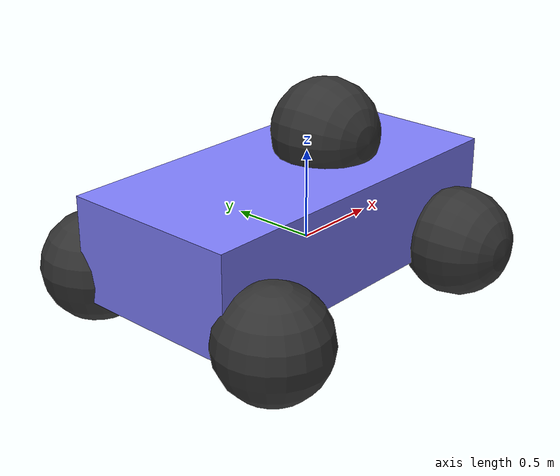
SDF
<?xml version="1.0" ?>
<sdf version="1.8">
    <model name='diff_drive'>

      <plugin filename="gz-sim-imu-system"
        name="gz::sim::systems::Imu">
      </plugin>

      <plugin
        filename="libignition-gazebo-imu-system.so"
        name="ignition::gazebo::systems::Imu">
      </plugin>

      <plugin
        filename="gz-sim-sensors-system"
        name="gz::sim::systems::Sensors">
        <render_engine>ogre2</render_engine>
      </plugin>

      <plugin
        filename="gz-sim-joint-state-publisher-system"
        name="gz::sim::systems::JointStatePublisher">
      </plugin>

      <plugin
        filename="gz-sim-pose-publisher-system"
        name="gz::sim::systems::PosePublisher">
        <publish_link_pose>true</publish_link_pose>
        <use_pose_vector_msg>true</use_pose_vector_msg>
        <static_publisher>true</static_publisher>
        <static_update_frequency>1</static_update_frequency>
      </plugin>

      <plugin
        filename="gz-sim-odometry-publisher-system"
        name="gz::sim::systems::OdometryPublisher">
        <odom_frame>diff_drive/odom</odom_frame>
        <robot_base_frame>diff_drive</robot_base_frame>
      </plugin>

      <plugin
        filename="ignition-gazebo-diff-drive-system"
        name="ignition::gazebo::systems::DiffDrive">
        <left_joint>left_wheel_joint</left_joint>
        <right_joint>right_wheel_joint</right_joint>
        <wheel_separation>1.25</wheel_separation>
        <wheel_radius>0.3</wheel_radius>
        <odom_publish_frequency>1</odom_publish_frequency>
        <max_linear_acceleration>2</max_linear_acceleration>
        <min_linear_acceleration>-2</min_linear_acceleration>
        <max_angular_acceleration>2</max_angular_acceleration>
        <min_angular_acceleration>-2</min_angular_acceleration>
        <max_linear_velocity>0.5</max_linear_velocity>
        <min_linear_velocity>-0.5</min_linear_velocity>
        <max_angular_velocity>1</max_angular_velocity>
        <min_angular_velocity>-1</min_angular_velocity>
      </plugin>

      <link name='chassis'>
        <pose>-0.151427 -0 0.175 0 -0 0</pose>
        <inertial>
          <mass>1.14395</mass>
          <inertia>
            <ixx>0.126164</ixx>
            <ixy>0</ixy>
            <ixz>0</ixz>
            <iyy>0.416519</iyy>
            <iyz>0</iyz>
            <izz>0.481014</izz>
          </inertia>
        </inertial>
        <visual name='visual_chassis'>
          <geometry>
            <box>
              <size>2.01142 1 0.568726</size>
            </box>
          </geometry>
          <material>
            <ambient>0.5 0.5 1.0 1</ambient>
            <diffuse>0.5 0.5 1.0 1</diffuse>
            <specular>0.0 0.0 1.0 1</specular>
          </material>
        </visual>
        <collision name='collision_chassis'>
          <geometry>
            <box>
              <size>2.01142 1 0.568726</size>
            </box>
          </geometry>
        </collision>

        <sensor name='gpu_lidar1' type='gpu_lidar'>"
          <topic>/diff_drive/lidar</topic>
          <update_rate>10</update_rate>
          <ignition_frame_id>diff_drive/chassis</ignition_frame_id>
          <ray>
            <scan>
                <horizontal>
                    <samples>640</samples>
                    <resolution>1</resolution>
                    <min_angle>-1.396263</min_angle>
                    <max_angle>1.396263</max_angle>
                </horizontal>
                <vertical>
                    <samples>1</samples>
                    <resolution>0.01</resolution>
                    <min_angle>0</min_angle>
                    <max_angle>0</max_angle>
                </vertical>
            </scan>
            <range>
                <min>0.08</min>
                <max>10.0</max>
                <resolution>0.01</resolution>
            </range>
          </ray>
          <always_on>1</always_on>
          <visualize>true</visualize>
        </sensor>

      </link>

      <link name='tank_tower'>
        <pose>0.151427 -0 0.568726 -1.5707 0 0</pose>
        <inertial>
          <mass>2</mass>
          <inertia>
            <ixx>0.145833</ixx>
            <ixy>0</ixy>
            <ixz>0</ixz>
            <iyy>0.145833</iyy>
            <iyz>0</iyz>
            <izz>0.125</izz>
          </inertia>
        </inertial>
        <visual name='visual_left_wheel'>
          <geometry>
            <sphere>
              <radius>0.3</radius>
            </sphere>
          </geometry>
          <material>
            <ambient>0.2 0.2 0.2 1</ambient>
            <diffuse>0.2 0.2 0.2 1</diffuse>
            <specular>0.2 0.2 0.2 1</specular>
          </material>
        </visual>
        <collision name='collision_left_wheel'>
          <geometry>
            <sphere>
              <radius>0.3</radius>
            </sphere>
          </geometry>
        </collision>
      </link>

      <link name='left_wheel'>
        <pose>0.554283 0.625029 -0.025 -1.5707 0 0</pose>
        <inertial>
          <mass>2</mass>
          <inertia>
            <ixx>0.145833</ixx>
            <ixy>0</ixy>
            <ixz>0</ixz>
            <iyy>0.145833</iyy>
            <iyz>0</iyz>
            <izz>0.125</izz>
          </inertia>
        </inertial>
        <visual name='visual_left_wheel'>
          <geometry>
            <sphere>
              <radius>0.3</radius>
            </sphere>
          </geometry>
          <material>
            <ambient>0.2 0.2 0.2 1</ambient>
            <diffuse>0.2 0.2 0.2 1</diffuse>
            <specular>0.2 0.2 0.2 1</specular>
          </material>
        </visual>
        <collision name='collision_left_wheel'>
          <geometry>
            <sphere>
              <radius>0.3</radius>
            </sphere>
          </geometry>
        </collision>
      </link>

      <link name='right_wheel'>
        <pose>0.554282 -0.625029 -0.025 -1.5707 0 0</pose>
        <inertial>
          <mass>2</mass>
          <inertia>
            <ixx>0.145833</ixx>
            <ixy>0</ixy>
            <ixz>0</ixz>
            <iyy>0.145833</iyy>
            <iyz>0</iyz>
            <izz>0.125</izz>
          </inertia>
        </inertial>
        <visual name='visual_right_wheel'>
          <geometry>
            <sphere>
              <radius>0.3</radius>
            </sphere>
          </geometry>
          <material>
            <ambient>0.2 0.2 0.2 1</ambient>
            <diffuse>0.2 0.2 0.2 1</diffuse>
            <specular>0.2 0.2 0.2 1</specular>
          </material>
        </visual>
        <collision name='collision_right_wheel'>
          <geometry>
            <sphere>
              <radius>0.3</radius>
            </sphere>
          </geometry>
        </collision>
      </link>

      <link name='left_caster'>
        <pose>-0.957138 0.625029 -0.025 0 -0 0</pose>
        <inertial>
          <mass>2</mass>
          <inertia>
            <ixx>0.145833</ixx>
            <ixy>0</ixy>
            <ixz>0</ixz>
            <iyy>0.145833</iyy>
            <iyz>0</iyz>
            <izz>0.125</izz>
          </inertia>
        </inertial>
        <visual name='visual_caster'>
          <geometry>
            <sphere>
              <radius>0.3</radius>
            </sphere>
          </geometry>
          <material>
            <ambient>0.2 0.2 0.2 1</ambient>
            <diffuse>0.2 0.2 0.2 1</diffuse>
            <specular>0.2 0.2 0.2 1</specular>
          </material>
        </visual>
        <collision name='collision_caster'>
          <geometry>
            <sphere>
              <radius>0.3</radius>
            </sphere>
          </geometry>
        </collision>
      </link>

      <link name='right_caster'>
        <pose>-0.957138 -0.625029 -0.025 0 -0 0</pose>
        <inertial>
          <mass>2</mass>
          <inertia>
            <ixx>0.145833</ixx>
            <ixy>0</ixy>
            <ixz>0</ixz>
            <iyy>0.145833</iyy>
            <iyz>0</iyz>
            <izz>0.125</izz>
          </inertia>
        </inertial>
        <visual name='visual_caster'>
          <geometry>
            <sphere>
              <radius>0.3</radius>
            </sphere>
          </geometry>
          <material>
            <ambient>0.2 0.2 0.2 1</ambient>
            <diffuse>0.2 0.2 0.2 1</diffuse>
            <specular>0.2 0.2 0.2 1</specular>
          </material>
        </visual>
        <collision name='collision_caster'>
          <geometry>
            <sphere>
              <radius>0.3</radius>
            </sphere>
          </geometry>
        </collision>
      </link>

      <joint name='left_wheel_joint' type='revolute'>
        <parent>chassis</parent>
        <child>left_wheel</child>
        <axis>
          <xyz>0 0 1</xyz>
          <limit>
            <lower>-1.79769e+308</lower>
            <upper>1.79769e+308</upper>
          </limit>
        </axis>
      </joint>

      <joint name='right_wheel_joint' type='revolute'>
        <parent>chassis</parent>
        <child>right_wheel</child>
        <axis>
          <xyz>0 0 1</xyz>
          <limit>
            <lower>-1.79769e+308</lower>
            <upper>1.79769e+308</upper>
          </limit>
        </axis>
      </joint>

      <joint name='tank_tower_joint' type='revolute'>
        <parent>chassis</parent>
        <child>tank_tower</child>
        <axis>
          <xyz>0 0 1</xyz>
          <limit>
            <lower>-1.79769e+308</lower>
            <upper>1.79769e+308</upper>
          </limit>
        </axis>
      </joint>

      <joint name='left_caster_joint' type='ball'>
        <parent>chassis</parent>
        <child>left_caster</child>
      </joint>

      <joint name='right_caster_joint' type='ball'>
        <parent>chassis</parent>
        <child>right_caster</child>
      </joint>

    </model>
</sdf>
